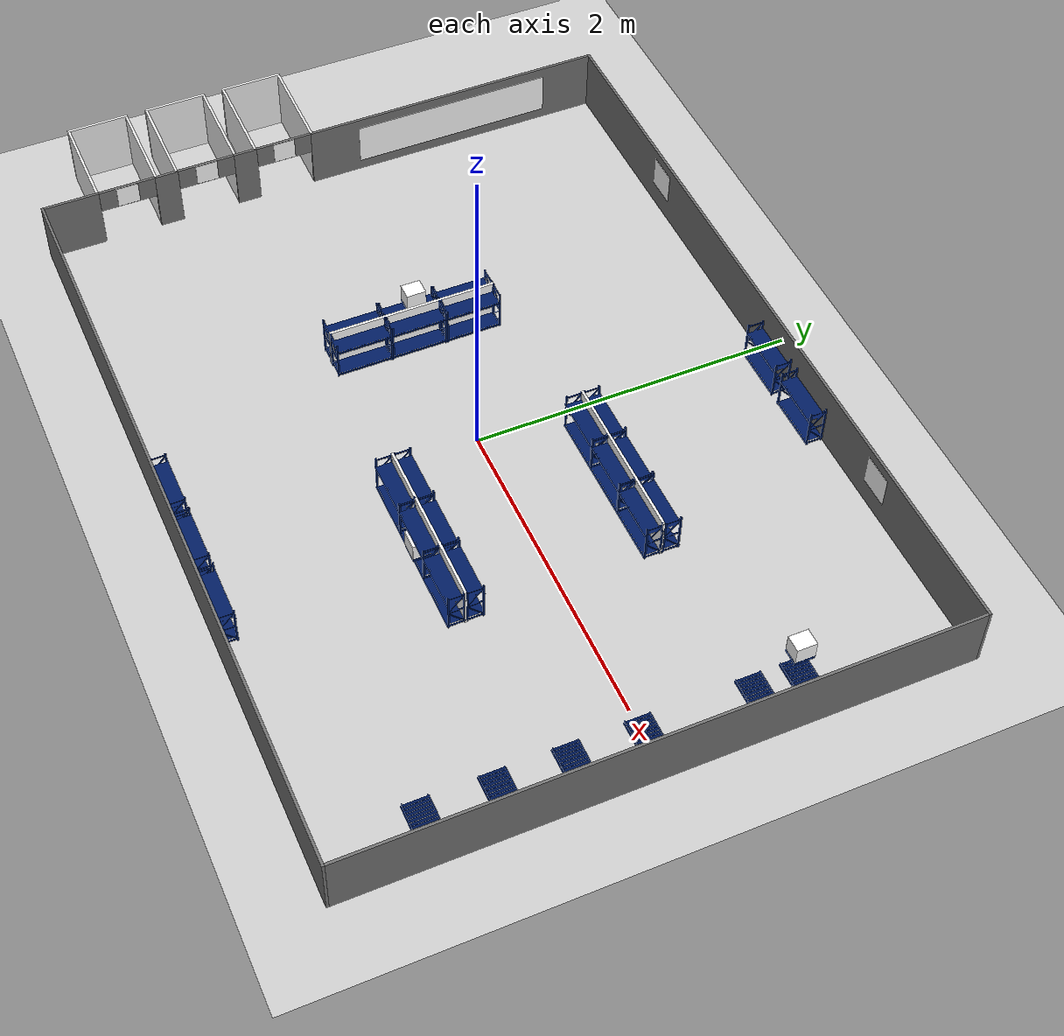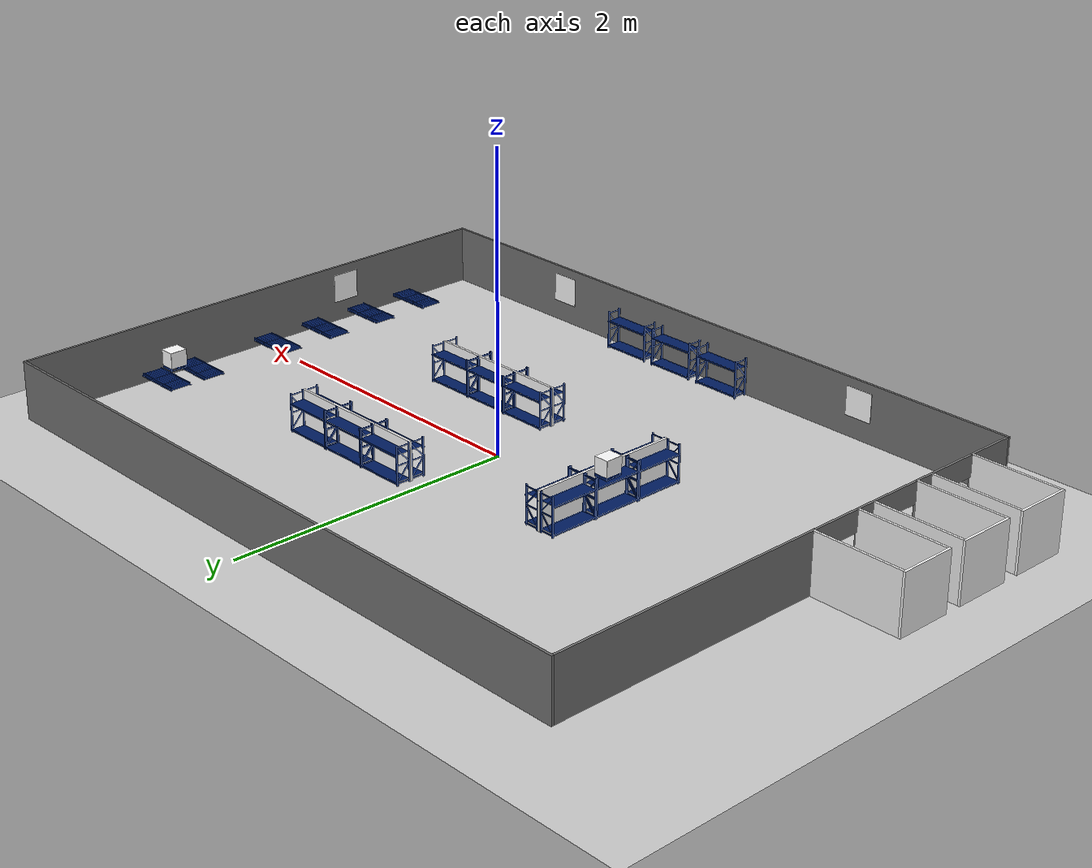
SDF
<?xml version="1.0" ?>
<sdf version="1.8">
  <world name="factory_world">

    <physics name="fast_physics" type="ignored">
      <max_step_size>0.004</max_step_size>
      <real_time_factor>1.0</real_time_factor>
      <real_time_update_rate>250</real_time_update_rate>
    </physics>

    <plugin filename="libignition-gazebo-physics-system.so" name="ignition::gazebo::systems::Physics"/>
    <plugin filename="libignition-gazebo-user-commands-system.so" name="ignition::gazebo::systems::UserCommands"/>
    <plugin filename="libignition-gazebo-scene-broadcaster-system.so" name="ignition::gazebo::systems::SceneBroadcaster"/>
    <plugin filename="libignition-gazebo-contact-system.so" name="ignition::gazebo::systems::Contact"/>

    <scene>
      <shadows>false</shadows>
      <grid>false</grid>
    </scene>

    <light type="directional" name="sun">
      <cast_shadows>false</cast_shadows>
      <pose>0 0 10 0 0 0</pose>
      <diffuse>1 1 1 1</diffuse>
      <specular>0.5 0.5 0.5 1</specular>
    </light>

    <model name="ground_plane">
      <static>true</static>
      <link name="link">
        <collision name="collision">
          <geometry><plane><normal>0 0 1</normal><size>100 100</size></plane></geometry>
        </collision>
        <visual name="visual">
          <geometry><plane><normal>0 0 1</normal><size>100 100</size></plane></geometry>
          <material>
            <ambient>0.8 0.8 0.8 1</ambient>
            <diffuse>0.8 0.8 0.8 1</diffuse>
          </material>
        </visual>
      </link>
    </model>

    <model name="factory_walls">
      <static>true</static>

      <link name="north_wall">
        <pose>0 1.841 0.201 0 0 0</pose>
        <collision name="north_col">
          <geometry><box><size>4.884 0.016 0.402</size></box></geometry>
        </collision>
        <visual name="north_vis">
          <geometry><box><size>4.884 0.016 0.402</size></box></geometry>
          <material>
            <ambient>0.45 0.45 0.45 1</ambient>
            <diffuse>0.45 0.45 0.45 1</diffuse>
          </material>
        </visual>

        <visual name="aruco_0_vis">
          <pose>1.326 -0.009 0.039 0 0 0</pose>
          <geometry><box><size>0.2 0.002 0.2</size></box></geometry>
          <material>
            <ambient>1 1 1 1</ambient><diffuse>1 1 1 1</diffuse><emissive>1 1 1 1</emissive>
            <pbr>
              <metal>
                <albedo_map>model://puzzlebot_description/materials/textures/4x4_1000-0.png</albedo_map>
                <emissive_map>model://puzzlebot_description/materials/textures/4x4_1000-0.png</emissive_map>
                <roughness>1.0</roughness><metalness>0.0</metalness>
              </metal>
            </pbr>
          </material>
        </visual>

        <visual name="aruco_4_vis">
          <pose>-1.326 -0.009 0.039 0 0 0</pose>
          <geometry><box><size>0.2 0.002 0.2</size></box></geometry>
          <material>
            <ambient>1 1 1 1</ambient><diffuse>1 1 1 1</diffuse><emissive>1 1 1 1</emissive>
            <pbr>
              <metal>
                <albedo_map>model://puzzlebot_description/materials/textures/4x4_1000-4.png</albedo_map>
                <emissive_map>model://puzzlebot_description/materials/textures/4x4_1000-4.png</emissive_map>
                <roughness>1.0</roughness><metalness>0.0</metalness>
              </metal>
            </pbr>
          </material>
        </visual>
      </link>

      <link name="south_wall">
        <pose>0 -1.841 0.201 0 0 0</pose>
        <collision name="south_col">
          <geometry><box><size>4.884 0.016 0.402</size></box></geometry>
        </collision>
        <visual name="south_vis">
          <geometry><box><size>4.884 0.016 0.402</size></box></geometry>
          <material><ambient>0.45 0.45 0.45 1</ambient><diffuse>0.45 0.45 0.45 1</diffuse></material>
        </visual>

        <visual name="aruco_2_vis">
          <pose>1.326 0.009 0.039 0 0 0</pose>
          <geometry><box><size>0.2 0.002 0.2</size></box></geometry>
          <material>
            <ambient>1 1 1 1</ambient><diffuse>1 1 1 1</diffuse><emissive>1 1 1 1</emissive>
            <pbr>
              <metal>
                <albedo_map>model://puzzlebot_description/materials/textures/4x4_1000-2.png</albedo_map>
                <emissive_map>model://puzzlebot_description/materials/textures/4x4_1000-2.png</emissive_map>
                <roughness>1.0</roughness><metalness>0.0</metalness>
              </metal>
            </pbr>
          </material>
        </visual>

        <visual name="aruco_3_vis">
          <pose>-1.326 0.009 0.039 0 0 0</pose>
          <geometry><box><size>0.2 0.002 0.2</size></box></geometry>
          <material>
            <ambient>1 1 1 1</ambient><diffuse>1 1 1 1</diffuse><emissive>1 1 1 1</emissive>
            <pbr>
              <metal>
                <albedo_map>model://puzzlebot_description/materials/textures/4x4_1000-3.png</albedo_map>
                <emissive_map>model://puzzlebot_description/materials/textures/4x4_1000-3.png</emissive_map>
                <roughness>1.0</roughness><metalness>0.0</metalness>
              </metal>
            </pbr>
          </material>
        </visual>
      </link>

      <link name="east_wall">
        <pose>2.434 0 0.201 0 0 0</pose>
        <collision name="east_col">
          <geometry><box><size>0.016 3.666 0.402</size></box></geometry>
        </collision>
        <visual name="east_vis">
          <geometry><box><size>0.016 3.666 0.402</size></box></geometry>
          <material><ambient>0.45 0.45 0.45 1</ambient><diffuse>0.45 0.45 0.45 1</diffuse></material>
        </visual>

        <visual name="aruco_1_vis">
          <pose>-0.009 -0.733 0.039 0 0 0</pose>
          <geometry><box><size>0.002 0.2 0.2</size></box></geometry>
          <material>
            <ambient>1 1 1 1</ambient><diffuse>1 1 1 1</diffuse><emissive>1 1 1 1</emissive>
            <pbr>
              <metal>
                <albedo_map>model://puzzlebot_description/materials/textures/4x4_1000-1.png</albedo_map>
                <emissive_map>model://puzzlebot_description/materials/textures/4x4_1000-1.png</emissive_map>
                <roughness>1.0</roughness><metalness>0.0</metalness>
              </metal>
            </pbr>
          </material>
        </visual>
      </link>

      <link name="west_wall_seg1">
        <pose>-2.434 -1.6605 0.201 0 0 0</pose>
        <collision name="ww1_col"><geometry><box><size>0.016 0.345 0.402</size></box></geometry></collision>
        <visual name="ww1_vis"><geometry><box><size>0.016 0.345 0.402</size></box></geometry>
        <material><ambient>0.45 0.45 0.45 1</ambient><diffuse>0.45 0.45 0.45 1</diffuse></material></visual>
      </link>

      <link name="west_door1_header">
        <pose>-2.434 -1.308 0.329 0 0 0</pose>
        <collision name="wd1_col"><geometry><box><size>0.016 0.360 0.146</size></box></geometry></collision>
        <visual name="wd1_vis">
          <geometry><box><size>0.016 0.360 0.146</size></box></geometry>
          <material><ambient>0.45 0.45 0.45 1</ambient><diffuse>0.45 0.45 0.45 1</diffuse></material>
        </visual>

        <visual name="logo1_vis">
          <pose>0.009 0 0 0 0 0</pose>
          <geometry>
            <box><size>0.002 0.14 0.14</size></box>
          </geometry>
          <material>
            <ambient>1 1 1 1</ambient>
            <diffuse>1 1 1 1</diffuse>
            <emissive>1 1 1 1</emissive>
            <pbr>
              <metal>
                <albedo_map>model://puzzlebot_description/materials/textures/client_logo_1.png</albedo_map>
                <emissive_map>model://puzzlebot_description/materials/textures/client_logo_1.png</emissive_map>
                <roughness>1.0</roughness>
                <metalness>0.0</metalness>
              </metal>
            </pbr>
          </material>
        </visual>
      </link>

      <link name="west_wall_seg2">
        <pose>-2.434 -1.053 0.201 0 0 0</pose>
        <collision name="ww2_col"><geometry><box><size>0.016 0.150 0.402</size></box></geometry></collision>
        <visual name="ww2_vis"><geometry><box><size>0.016 0.150 0.402</size></box></geometry>
        <material><ambient>0.45 0.45 0.45 1</ambient><diffuse>0.45 0.45 0.45 1</diffuse></material></visual>
      </link>

      <link name="west_door2_header">
        <pose>-2.434 -0.795 0.329 0 0 0</pose>
        <collision name="wd2_col"><geometry><box><size>0.016 0.366 0.146</size></box></geometry></collision>
        <visual name="wd2_vis"><geometry><box><size>0.016 0.366 0.146</size></box></geometry>
        <material><ambient>0.45 0.45 0.45 1</ambient><diffuse>0.45 0.45 0.45 1</diffuse></material></visual>

        <visual name="logo2_vis">
          <pose>0.009 0 0 0 0 0</pose>
          <geometry>
            <box><size>0.002 0.14 0.14</size></box>
          </geometry>
          <material>
            <ambient>1 1 1 1</ambient>
            <diffuse>1 1 1 1</diffuse>
            <emissive>1 1 1 1</emissive>
            <pbr>
              <metal>
                <albedo_map>model://puzzlebot_description/materials/textures/client_logo_2.png</albedo_map>
                <emissive_map>model://puzzlebot_description/materials/textures/client_logo_2.png</emissive_map>
                <roughness>1.0</roughness>
                <metalness>0.0</metalness>
              </metal>
            </pbr>
          </material>
        </visual>
      </link>

      <link name="west_wall_seg3">
        <pose>-2.434 -0.537 0.201 0 0 0</pose>
        <collision name="ww3_col"><geometry><box><size>0.016 0.150 0.402</size></box></geometry></collision>
        <visual name="ww3_vis"><geometry><box><size>0.016 0.150 0.402</size></box></geometry>
        <material><ambient>0.45 0.45 0.45 1</ambient><diffuse>0.45 0.45 0.45 1</diffuse></material></visual>
      </link>

      <link name="west_door3_header">
        <pose>-2.434 -0.282 0.329 0 0 0</pose>
        <collision name="wd3_col"><geometry><box><size>0.016 0.360 0.146</size></box></geometry></collision>
        <visual name="wd3_vis"><geometry><box><size>0.016 0.360 0.146</size></box></geometry>
        <material><ambient>0.45 0.45 0.45 1</ambient><diffuse>0.45 0.45 0.45 1</diffuse></material></visual>

        <visual name="logo3_vis">
          <pose>0.009 0 0 0 0 0</pose>
          <geometry>
            <box><size>0.002 0.14 0.14</size></box>
          </geometry>
          <material>
            <ambient>1 1 1 1</ambient>
            <diffuse>1 1 1 1</diffuse>
            <emissive>1 1 1 1</emissive>
            <pbr>
              <metal>
                <albedo_map>model://puzzlebot_description/materials/textures/client_logo_3.png</albedo_map>
                <emissive_map>model://puzzlebot_description/materials/textures/client_logo_3.png</emissive_map>
                <roughness>1.0</roughness>
                <metalness>0.0</metalness>
              </metal>
            </pbr>
          </material>
        </visual>
      </link>

      <link name="west_wall_seg4">
        <pose>-2.434 0.8655 0.201 0 0 0</pose>
        <collision name="ww4_col"><geometry><box><size>0.016 1.935 0.402</size></box></geometry></collision>
        <visual name="ww4_vis"><geometry><box><size>0.016 1.935 0.402</size></box></geometry>
        <material><ambient>0.45 0.45 0.45 1</ambient><diffuse>0.45 0.45 0.45 1</diffuse></material></visual>
        <visual name="sponsor_logo_vis">
          <pose>0.009 0 0 0 0 0</pose>
          <geometry>
            <box><size>0.002 1.290 0.268</size></box>
          </geometry>
          <material>
            <ambient>1 1 1 1</ambient>
            <diffuse>1 1 1 1</diffuse>
            <emissive>1 1 1 1</emissive>
            <pbr>
              <metal>
                <albedo_map>model://puzzlebot_description/materials/textures/sponsor_logos.png</albedo_map>
                <emissive_map>model://puzzlebot_description/materials/textures/sponsor_logos.png</emissive_map>
                <roughness>1.0</roughness>
                <metalness>0.0</metalness>
              </metal>
            </pbr>
          </material>
        </visual>
      </link>

      <link name="d1_corr_l">
        <pose>-2.7415 -1.496 0.201 0 0 0</pose>
        <collision name="d1_cl_c"><geometry><box><size>0.615 0.016 0.402</size></box></geometry></collision>
        <visual name="d1_cl_v"><geometry><box><size>0.615 0.016 0.402</size></box></geometry><material><ambient>0.95 0.95 0.95 1</ambient><diffuse>0.95 0.95 0.95 1</diffuse></material></visual>
      </link>
      <link name="d1_corr_r">
        <pose>-2.7415 -1.120 0.201 0 0 0</pose>
        <collision name="d1_cr_c"><geometry><box><size>0.615 0.016 0.402</size></box></geometry></collision>
        <visual name="d1_cr_v"><geometry><box><size>0.615 0.016 0.402</size></box></geometry><material><ambient>0.95 0.95 0.95 1</ambient><diffuse>0.95 0.95 0.95 1</diffuse></material></visual>
      </link>
      <link name="d1_corr_b">
        <pose>-3.057 -1.308 0.201 0 0 0</pose>
        <collision name="d1_cb_c"><geometry><box><size>0.016 0.392 0.402</size></box></geometry></collision>
        <visual name="d1_cb_v"><geometry><box><size>0.016 0.392 0.402</size></box></geometry><material><ambient>0.95 0.95 0.95 1</ambient><diffuse>0.95 0.95 0.95 1</diffuse></material></visual>
      </link>

      <link name="d2_corr_l">
        <pose>-2.7415 -0.986 0.201 0 0 0</pose>
        <collision name="d2_cl_c"><geometry><box><size>0.615 0.016 0.402</size></box></geometry></collision>
        <visual name="d2_cl_v"><geometry><box><size>0.615 0.016 0.402</size></box></geometry><material><ambient>0.95 0.95 0.95 1</ambient><diffuse>0.95 0.95 0.95 1</diffuse></material></visual>
      </link>
      <link name="d2_corr_r">
        <pose>-2.7415 -0.604 0.201 0 0 0</pose>
        <collision name="d2_cr_c"><geometry><box><size>0.615 0.016 0.402</size></box></geometry></collision>
        <visual name="d2_cr_v"><geometry><box><size>0.615 0.016 0.402</size></box></geometry><material><ambient>0.95 0.95 0.95 1</ambient><diffuse>0.95 0.95 0.95 1</diffuse></material></visual>
      </link>
      <link name="d2_corr_b">
        <pose>-3.057 -0.795 0.201 0 0 0</pose>
        <collision name="d2_cb_c"><geometry><box><size>0.016 0.398 0.402</size></box></geometry></collision>
        <visual name="d2_cb_v"><geometry><box><size>0.016 0.398 0.402</size></box></geometry><material><ambient>0.95 0.95 0.95 1</ambient><diffuse>0.95 0.95 0.95 1</diffuse></material></visual>
      </link>

      <link name="d3_corr_l">
        <pose>-2.7415 -0.470 0.201 0 0 0</pose>
        <collision name="d3_cl_c"><geometry><box><size>0.615 0.016 0.402</size></box></geometry></collision>
        <visual name="d3_cl_v"><geometry><box><size>0.615 0.016 0.402</size></box></geometry><material><ambient>0.95 0.95 0.95 1</ambient><diffuse>0.95 0.95 0.95 1</diffuse></material></visual>
      </link>
      <link name="d3_corr_r">
        <pose>-2.7415 -0.094 0.201 0 0 0</pose>
        <collision name="d3_cr_c"><geometry><box><size>0.615 0.016 0.402</size></box></geometry></collision>
        <visual name="d3_cr_v"><geometry><box><size>0.615 0.016 0.402</size></box></geometry><material><ambient>0.95 0.95 0.95 1</ambient><diffuse>0.95 0.95 0.95 1</diffuse></material></visual>
      </link>
      <link name="d3_corr_b">
        <pose>-3.057 -0.282 0.201 0 0 0</pose>
        <collision name="d3_cb_c"><geometry><box><size>0.016 0.392 0.402</size></box></geometry></collision>
        <visual name="d3_cb_v"><geometry><box><size>0.016 0.392 0.402</size></box></geometry><material><ambient>0.95 0.95 0.95 1</ambient><diffuse>0.95 0.95 0.95 1</diffuse></material></visual>
      </link>
    </model>

    <model name="rack_north_1"><static>true</static><pose>0.781 1.833 0 0 0 0</pose>
      <link name="rack_link"><collision name="rack_col"><geometry><mesh><uri>model://puzzlebot_description/models/rack_collision.stl</uri></mesh></geometry></collision>
      <visual name="rack_vis"><geometry><mesh><uri>model://puzzlebot_description/models/rack.stl</uri></mesh></geometry><material><ambient>0.0 0.11 0.38 1</ambient><diffuse>0.0 0.11 0.38 1</diffuse><specular>0.2 0.2 0.2 1</specular></material></visual></link>
    </model>

    <model name="rack_north_2"><static>true</static><pose>0.366 1.833 0 0 0 0</pose>
      <link name="rack_link"><collision name="rack_col"><geometry><mesh><uri>model://puzzlebot_description/models/rack_collision.stl</uri></mesh></geometry></collision>
      <visual name="rack_vis"><geometry><mesh><uri>model://puzzlebot_description/models/rack.stl</uri></mesh></geometry><material><ambient>0.0 0.11 0.38 1</ambient><diffuse>0.0 0.11 0.38 1</diffuse><specular>0.2 0.2 0.2 1</specular></material></visual></link>
    </model>

    <model name="rack_south_1"><static>true</static><pose>0.781 -1.722 0 0 0 0</pose>
      <link name="rack_link"><collision name="rack_col"><geometry><mesh><uri>model://puzzlebot_description/models/rack_collision.stl</uri></mesh></geometry></collision>
      <visual name="rack_vis"><geometry><mesh><uri>model://puzzlebot_description/models/rack.stl</uri></mesh></geometry><material><ambient>0.0 0.11 0.38 1</ambient><diffuse>0.0 0.11 0.38 1</diffuse><specular>0.2 0.2 0.2 1</specular></material></visual></link>
    </model>

    <model name="rack_south_2"><static>true</static><pose>0.366 -1.722 0 0 0 0</pose>
      <link name="rack_link"><collision name="rack_col"><geometry><mesh><uri>model://puzzlebot_description/models/rack_collision.stl</uri></mesh></geometry></collision>
      <visual name="rack_vis"><geometry><mesh><uri>model://puzzlebot_description/models/rack.stl</uri></mesh></geometry><material><ambient>0.0 0.11 0.38 1</ambient><diffuse>0.0 0.11 0.38 1</diffuse><specular>0.2 0.2 0.2 1</specular></material></visual></link>
    </model>

    <model name="rack_south_3"><static>true</static><pose>-0.049 -1.722 0 0 0 0</pose>
      <link name="rack_link"><collision name="rack_col"><geometry><mesh><uri>model://puzzlebot_description/models/rack_collision.stl</uri></mesh></geometry></collision>
      <visual name="rack_vis"><geometry><mesh><uri>model://puzzlebot_description/models/rack.stl</uri></mesh></geometry><material><ambient>0.0 0.11 0.38 1</ambient><diffuse>0.0 0.11 0.38 1</diffuse><specular>0.2 0.2 0.2 1</specular></material></visual></link>
    </model>

    <model name="rack_s1_p1_1"><static>true</static><pose>1.151 0.723 0 0 0 0</pose>
      <link name="rack_link"><collision name="rack_col"><geometry><mesh><uri>model://puzzlebot_description/models/rack_collision.stl</uri></mesh></geometry></collision>
      <visual name="rack_vis"><geometry><mesh><uri>model://puzzlebot_description/models/rack.stl</uri></mesh></geometry><material><ambient>0.0 0.11 0.38 1</ambient><diffuse>0.0 0.11 0.38 1</diffuse><specular>0.2 0.2 0.2 1</specular></material></visual></link>
    </model>
    <model name="rack_s1_p1_2"><static>true</static><pose>1.151 0.612 0 0 0 0</pose>
      <link name="rack_link"><collision name="rack_col"><geometry><mesh><uri>model://puzzlebot_description/models/rack_collision.stl</uri></mesh></geometry></collision>
      <visual name="rack_vis"><geometry><mesh><uri>model://puzzlebot_description/models/rack.stl</uri></mesh></geometry><material><ambient>0.0 0.11 0.38 1</ambient><diffuse>0.0 0.11 0.38 1</diffuse><specular>0.2 0.2 0.2 1</specular></material></visual></link>
    </model>

    <model name="rack_s1_p2_1"><static>true</static><pose>0.801 0.723 0 0 0 0</pose>
      <link name="rack_link"><collision name="rack_col"><geometry><mesh><uri>model://puzzlebot_description/models/rack_collision.stl</uri></mesh></geometry></collision>
      <visual name="rack_vis"><geometry><mesh><uri>model://puzzlebot_description/models/rack.stl</uri></mesh></geometry><material><ambient>0.0 0.11 0.38 1</ambient><diffuse>0.0 0.11 0.38 1</diffuse><specular>0.2 0.2 0.2 1</specular></material></visual></link>
    </model>
    <model name="rack_s1_p2_2"><static>true</static><pose>0.801 0.612 0 0 0 0</pose>
      <link name="rack_link"><collision name="rack_col"><geometry><mesh><uri>model://puzzlebot_description/models/rack_collision.stl</uri></mesh></geometry></collision>
      <visual name="rack_vis"><geometry><mesh><uri>model://puzzlebot_description/models/rack.stl</uri></mesh></geometry><material><ambient>0.0 0.11 0.38 1</ambient><diffuse>0.0 0.11 0.38 1</diffuse><specular>0.2 0.2 0.2 1</specular></material></visual></link>
    </model>

    <model name="rack_s1_p3_1"><static>true</static><pose>0.451 0.723 0 0 0 0</pose>
      <link name="rack_link"><collision name="rack_col"><geometry><mesh><uri>model://puzzlebot_description/models/rack_collision.stl</uri></mesh></geometry></collision>
      <visual name="rack_vis"><geometry><mesh><uri>model://puzzlebot_description/models/rack.stl</uri></mesh></geometry><material><ambient>0.0 0.11 0.38 1</ambient><diffuse>0.0 0.11 0.38 1</diffuse><specular>0.2 0.2 0.2 1</specular></material></visual></link>
    </model>
    <model name="rack_s1_p3_2"><static>true</static><pose>0.451 0.612 0 0 0 0</pose>
      <link name="rack_link"><collision name="rack_col"><geometry><mesh><uri>model://puzzlebot_description/models/rack_collision.stl</uri></mesh></geometry></collision>
      <visual name="rack_vis"><geometry><mesh><uri>model://puzzlebot_description/models/rack.stl</uri></mesh></geometry><material><ambient>0.0 0.11 0.38 1</ambient><diffuse>0.0 0.11 0.38 1</diffuse><specular>0.2 0.2 0.2 1</specular></material></visual></link>
    </model>

    <model name="rack_s2_p1_1"><static>true</static><pose>1.151 -0.449 0 0 0 0</pose>
      <link name="rack_link"><collision name="rack_col"><geometry><mesh><uri>model://puzzlebot_description/models/rack_collision.stl</uri></mesh></geometry></collision>
      <visual name="rack_vis"><geometry><mesh><uri>model://puzzlebot_description/models/rack.stl</uri></mesh></geometry><material><ambient>0.0 0.11 0.38 1</ambient><diffuse>0.0 0.11 0.38 1</diffuse><specular>0.2 0.2 0.2 1</specular></material></visual></link>
    </model>
    <model name="rack_s2_p1_2"><static>true</static><pose>1.151 -0.560 0 0 0 0</pose>
      <link name="rack_link"><collision name="rack_col"><geometry><mesh><uri>model://puzzlebot_description/models/rack_collision.stl</uri></mesh></geometry></collision>
      <visual name="rack_vis"><geometry><mesh><uri>model://puzzlebot_description/models/rack.stl</uri></mesh></geometry><material><ambient>0.0 0.11 0.38 1</ambient><diffuse>0.0 0.11 0.38 1</diffuse><specular>0.2 0.2 0.2 1</specular></material></visual></link>
    </model>

    <model name="rack_s2_p2_1"><static>true</static><pose>0.801 -0.449 0 0 0 0</pose>
      <link name="rack_link"><collision name="rack_col"><geometry><mesh><uri>model://puzzlebot_description/models/rack_collision.stl</uri></mesh></geometry></collision>
      <visual name="rack_vis"><geometry><mesh><uri>model://puzzlebot_description/models/rack.stl</uri></mesh></geometry><material><ambient>0.0 0.11 0.38 1</ambient><diffuse>0.0 0.11 0.38 1</diffuse><specular>0.2 0.2 0.2 1</specular></material></visual></link>
    </model>
    <model name="rack_s2_p2_2"><static>true</static><pose>0.801 -0.560 0 0 0 0</pose>
      <link name="rack_link"><collision name="rack_col"><geometry><mesh><uri>model://puzzlebot_description/models/rack_collision.stl</uri></mesh></geometry></collision>
      <visual name="rack_vis"><geometry><mesh><uri>model://puzzlebot_description/models/rack.stl</uri></mesh></geometry><material><ambient>0.0 0.11 0.38 1</ambient><diffuse>0.0 0.11 0.38 1</diffuse><specular>0.2 0.2 0.2 1</specular></material></visual></link>
    </model>

    <model name="rack_s2_p3_1"><static>true</static><pose>0.451 -0.449 0 0 0 0</pose>
      <link name="rack_link"><collision name="rack_col"><geometry><mesh><uri>model://puzzlebot_description/models/rack_collision.stl</uri></mesh></geometry></collision>
      <visual name="rack_vis"><geometry><mesh><uri>model://puzzlebot_description/models/rack.stl</uri></mesh></geometry><material><ambient>0.0 0.11 0.38 1</ambient><diffuse>0.0 0.11 0.38 1</diffuse><specular>0.2 0.2 0.2 1</specular></material></visual></link>
    </model>
    <model name="rack_s2_p3_2"><static>true</static><pose>0.451 -0.560 0 0 0 0</pose>
      <link name="rack_link"><collision name="rack_col"><geometry><mesh><uri>model://puzzlebot_description/models/rack_collision.stl</uri></mesh></geometry></collision>
      <visual name="rack_vis"><geometry><mesh><uri>model://puzzlebot_description/models/rack.stl</uri></mesh></geometry><material><ambient>0.0 0.11 0.38 1</ambient><diffuse>0.0 0.11 0.38 1</diffuse><specular>0.2 0.2 0.2 1</specular></material></visual></link>
    </model>

    <model name="rack_s3_1"><static>true</static><pose>-0.885 -0.210 0 0 0 1.5708</pose>
      <link name="rack_link"><collision name="rack_col"><geometry><mesh><uri>model://puzzlebot_description/models/rack_collision.stl</uri></mesh></geometry></collision>
      <visual name="rack_vis"><geometry><mesh><uri>model://puzzlebot_description/models/rack.stl</uri></mesh></geometry><material><ambient>0.0 0.11 0.38 1</ambient><diffuse>0.0 0.11 0.38 1</diffuse><specular>0.2 0.2 0.2 1</specular></material></visual></link>
    </model>

    <model name="rack_s3_3"><static>true</static><pose>-0.885 0.140 0 0 0 1.5708</pose>
      <link name="rack_link"><collision name="rack_col"><geometry><mesh><uri>model://puzzlebot_description/models/rack_collision.stl</uri></mesh></geometry></collision>
      <visual name="rack_vis"><geometry><mesh><uri>model://puzzlebot_description/models/rack.stl</uri></mesh></geometry><material><ambient>0.0 0.11 0.38 1</ambient><diffuse>0.0 0.11 0.38 1</diffuse><specular>0.2 0.2 0.2 1</specular></material></visual></link>
    </model>

    <model name="rack_s3_5"><static>true</static><pose>-0.885 0.490 0 0 0 1.5708</pose>
      <link name="rack_link"><collision name="rack_col"><geometry><mesh><uri>model://puzzlebot_description/models/rack_collision.stl</uri></mesh></geometry></collision>
      <visual name="rack_vis"><geometry><mesh><uri>model://puzzlebot_description/models/rack.stl</uri></mesh></geometry><material><ambient>0.0 0.11 0.38 1</ambient><diffuse>0.0 0.11 0.38 1</diffuse><specular>0.2 0.2 0.2 1</specular></material></visual></link>
    </model>

    <model name="rack_s3_2"><static>true</static><pose>-1.012 -0.210 0 0 0 1.5708</pose>
      <link name="rack_link"><collision name="rack_col"><geometry><mesh><uri>model://puzzlebot_description/models/rack_collision.stl</uri></mesh></geometry></collision>
      <visual name="rack_vis"><geometry><mesh><uri>model://puzzlebot_description/models/rack.stl</uri></mesh></geometry><material><ambient>0.0 0.11 0.38 1</ambient><diffuse>0.0 0.11 0.38 1</diffuse><specular>0.2 0.2 0.2 1</specular></material></visual></link>
    </model>

    <model name="rack_s3_4"><static>true</static><pose>-1.012 0.140 0 0 0 1.5708</pose>
      <link name="rack_link"><collision name="rack_col"><geometry><mesh><uri>model://puzzlebot_description/models/rack_collision.stl</uri></mesh></geometry></collision>
      <visual name="rack_vis"><geometry><mesh><uri>model://puzzlebot_description/models/rack.stl</uri></mesh></geometry><material><ambient>0.0 0.11 0.38 1</ambient><diffuse>0.0 0.11 0.38 1</diffuse><specular>0.2 0.2 0.2 1</specular></material></visual></link>
    </model>

    <model name="rack_s3_6"><static>true</static><pose>-1.012 0.490 0 0 0 1.5708</pose>
      <link name="rack_link"><collision name="rack_col"><geometry><mesh><uri>model://puzzlebot_description/models/rack_collision.stl</uri></mesh></geometry></collision>
      <visual name="rack_vis"><geometry><mesh><uri>model://puzzlebot_description/models/rack.stl</uri></mesh></geometry><material><ambient>0.0 0.11 0.38 1</ambient><diffuse>0.0 0.11 0.38 1</diffuse><specular>0.2 0.2 0.2 1</specular></material></visual></link>
    </model>

    <model name="rack_middle_walls">
      <static>true</static>

      <link name="set1_middle_wall">
        <pose>0.626 0.612 0.1325 0 0 0</pose>
        <collision name="s1_wall_col"><geometry><box><size>1.050 0.016 0.265</size></box></geometry></collision>
        <visual name="s1_wall_vis"><geometry><box><size>1.050 0.016 0.265</size></box></geometry><material><ambient>1 1 1 1</ambient><diffuse>1 1 1 1</diffuse></material></visual>
      </link>

      <link name="set2_middle_wall">
        <pose>0.626 -0.560 0.1325 0 0 0</pose>
        <collision name="s2_wall_col"><geometry><box><size>1.050 0.016 0.265</size></box></geometry></collision>
        <visual name="s2_wall_vis"><geometry><box><size>1.050 0.016 0.265</size></box></geometry><material><ambient>1 1 1 1</ambient><diffuse>1 1 1 1</diffuse></material></visual>
      </link>

      <link name="set3_middle_wall">
        <pose>-0.893 -0.035 0.1325 0 0 0</pose>
        <collision name="s3_wall_col"><geometry><box><size>0.016 1.050 0.265</size></box></geometry></collision>
        <visual name="s3_wall_vis"><geometry><box><size>0.016 1.050 0.265</size></box></geometry><material><ambient>1 1 1 1</ambient><diffuse>1 1 1 1</diffuse></material></visual>
      </link>
    </model>

    <model name="conveyor_1">
      <static>true</static>
      <pose>2.3765 0.9110 0.0500 0 0 1.57080</pose>
      <link name="conveyor_link">

        <collision name="conveyor_col">
          <pose>0 0 0 0 0 0</pose>
          <geometry>
            <mesh>
              <uri>model://puzzlebot_description/models/conveyor_collision.stl</uri>
            </mesh>
          </geometry>
        </collision>

        <visual name="conveyor_visual">
          <pose>0 0 0 0 0 0</pose>
          <geometry><mesh><uri>model://puzzlebot_description/models/conveyor.stl</uri></mesh></geometry>
          <material>
            <ambient>0.0 0.11 0.38 1</ambient>
            <diffuse>0.0 0.11 0.38 1</diffuse>
            <specular>0.2 0.2 0.2 1</specular>
          </material>
        </visual>
      </link>
    </model>

    <model name="conveyor_2">
      <static>true</static>
      <pose>2.2615 0.9110 0.0500 0 0 1.57080</pose>
      <link name="conveyor_link">

        <collision name="conveyor_col">
          <pose>0 0 0 0 0 0</pose>
          <geometry>
            <mesh>
              <uri>model://puzzlebot_description/models/conveyor_collision.stl</uri>
            </mesh>
          </geometry>
        </collision>

        <visual name="conveyor_visual">
          <pose>0 0 0 0 0 0</pose>
          <geometry><mesh><uri>model://puzzlebot_description/models/conveyor.stl</uri></mesh></geometry>
          <material>
            <ambient>0.0 0.11 0.38 1</ambient>
            <diffuse>0.0 0.11 0.38 1</diffuse>
            <specular>0.2 0.2 0.2 1</specular>
          </material>
        </visual>
      </link>
    </model>

    <model name="conveyor_3">
      <static>true</static>
      <pose>2.1465 0.9110 0.0500 0 0 1.57080</pose>
      <link name="conveyor_link">

        <collision name="conveyor_col">
          <pose>0 0 0 0 0 0</pose>
          <geometry>
            <mesh>
              <uri>model://puzzlebot_description/models/conveyor_collision.stl</uri>
            </mesh>
          </geometry>
        </collision>

        <visual name="conveyor_visual">
          <pose>0 0 0 0 0 0</pose>
          <geometry><mesh><uri>model://puzzlebot_description/models/conveyor.stl</uri></mesh></geometry>
          <material>
            <ambient>0.0 0.11 0.38 1</ambient>
            <diffuse>0.0 0.11 0.38 1</diffuse>
            <specular>0.2 0.2 0.2 1</specular>
          </material>
        </visual>
      </link>
    </model>

    <model name="conveyor_4">
      <static>true</static>
      <pose>2.3765 0.6460 0.0500 0 0 1.57080</pose>
      <link name="conveyor_link">

        <collision name="conveyor_col">
          <pose>0 0 0 0 0 0</pose>
          <geometry>
            <mesh>
              <uri>model://puzzlebot_description/models/conveyor_collision.stl</uri>
            </mesh>
          </geometry>
        </collision>

        <visual name="conveyor_visual">
          <pose>0 0 0 0 0 0</pose>
          <geometry><mesh><uri>model://puzzlebot_description/models/conveyor.stl</uri></mesh></geometry>
          <material>
            <ambient>0.0 0.11 0.38 1</ambient>
            <diffuse>0.0 0.11 0.38 1</diffuse>
            <specular>0.2 0.2 0.2 1</specular>
          </material>
        </visual>
      </link>
    </model>

    <model name="conveyor_5">
      <static>true</static>
      <pose>2.2615 0.6460 0.0500 0 0 1.57080</pose>
      <link name="conveyor_link">

        <collision name="conveyor_col">
          <pose>0 0 0 0 0 0</pose>
          <geometry>
            <mesh>
              <uri>model://puzzlebot_description/models/conveyor_collision.stl</uri>
            </mesh>
          </geometry>
        </collision>

        <visual name="conveyor_visual">
          <pose>0 0 0 0 0 0</pose>
          <geometry><mesh><uri>model://puzzlebot_description/models/conveyor.stl</uri></mesh></geometry>
          <material>
            <ambient>0.0 0.11 0.38 1</ambient>
            <diffuse>0.0 0.11 0.38 1</diffuse>
            <specular>0.2 0.2 0.2 1</specular>
          </material>
        </visual>
      </link>
    </model>

    <model name="conveyor_6">
      <static>true</static>
      <pose>2.1465 0.6460 0.0500 0 0 1.57080</pose>
      <link name="conveyor_link">

        <collision name="conveyor_col">
          <pose>0 0 0 0 0 0</pose>
          <geometry>
            <mesh>
              <uri>model://puzzlebot_description/models/conveyor_collision.stl</uri>
            </mesh>
          </geometry>
        </collision>

        <visual name="conveyor_visual">
          <pose>0 0 0 0 0 0</pose>
          <geometry><mesh><uri>model://puzzlebot_description/models/conveyor.stl</uri></mesh></geometry>
          <material>
            <ambient>0.0 0.11 0.38 1</ambient>
            <diffuse>0.0 0.11 0.38 1</diffuse>
            <specular>0.2 0.2 0.2 1</specular>
          </material>
        </visual>
      </link>
    </model>

    <model name="conveyor_7">
      <static>true</static>
      <pose>2.3765 0.0010 0.0500 0 0 1.57080</pose>
      <link name="conveyor_link">

        <collision name="conveyor_col">
          <pose>0 0 0 0 0 0</pose>
          <geometry>
            <mesh>
              <uri>model://puzzlebot_description/models/conveyor_collision.stl</uri>
            </mesh>
          </geometry>
        </collision>

        <visual name="conveyor_visual">
          <pose>0 0 0 0 0 0</pose>
          <geometry><mesh><uri>model://puzzlebot_description/models/conveyor.stl</uri></mesh></geometry>
          <material>
            <ambient>0.0 0.11 0.38 1</ambient>
            <diffuse>0.0 0.11 0.38 1</diffuse>
            <specular>0.2 0.2 0.2 1</specular>
          </material>
        </visual>
      </link>
    </model>

    <model name="conveyor_8">
      <static>true</static>
      <pose>2.2615 0.0010 0.0500 0 0 1.57080</pose>
      <link name="conveyor_link">

        <collision name="conveyor_col">
          <pose>0 0 0 0 0 0</pose>
          <geometry>
            <mesh>
              <uri>model://puzzlebot_description/models/conveyor_collision.stl</uri>
            </mesh>
          </geometry>
        </collision>

        <visual name="conveyor_visual">
          <pose>0 0 0 0 0 0</pose>
          <geometry><mesh><uri>model://puzzlebot_description/models/conveyor.stl</uri></mesh></geometry>
          <material>
            <ambient>0.0 0.11 0.38 1</ambient>
            <diffuse>0.0 0.11 0.38 1</diffuse>
            <specular>0.2 0.2 0.2 1</specular>
          </material>
        </visual>
      </link>
    </model>

    <model name="conveyor_9">
      <static>true</static>
      <pose>2.1465 0.0010 0.0500 0 0 1.57080</pose>
      <link name="conveyor_link">

        <collision name="conveyor_col">
          <pose>0 0 0 0 0 0</pose>
          <geometry>
            <mesh>
              <uri>model://puzzlebot_description/models/conveyor_collision.stl</uri>
            </mesh>
          </geometry>
        </collision>

        <visual name="conveyor_visual">
          <pose>0 0 0 0 0 0</pose>
          <geometry><mesh><uri>model://puzzlebot_description/models/conveyor.stl</uri></mesh></geometry>
          <material>
            <ambient>0.0 0.11 0.38 1</ambient>
            <diffuse>0.0 0.11 0.38 1</diffuse>
            <specular>0.2 0.2 0.2 1</specular>
          </material>
        </visual>
      </link>
    </model>

    <model name="conveyor_10">
      <static>true</static>
      <pose>2.3765 -0.4090 0.0500 0 0 1.57080</pose>
      <link name="conveyor_link">

        <collision name="conveyor_col">
          <pose>0 0 0 0 0 0</pose>
          <geometry>
            <mesh>
              <uri>model://puzzlebot_description/models/conveyor_collision.stl</uri>
            </mesh>
          </geometry>
        </collision>

        <visual name="conveyor_visual">
          <pose>0 0 0 0 0 0</pose>
          <geometry><mesh><uri>model://puzzlebot_description/models/conveyor.stl</uri></mesh></geometry>
          <material>
            <ambient>0.0 0.11 0.38 1</ambient>
            <diffuse>0.0 0.11 0.38 1</diffuse>
            <specular>0.2 0.2 0.2 1</specular>
          </material>
        </visual>
      </link>
    </model>

    <model name="conveyor_11">
      <static>true</static>
      <pose>2.2615 -0.4090 0.0500 0 0 1.57080</pose>
      <link name="conveyor_link">

        <collision name="conveyor_col">
          <pose>0 0 0 0 0 0</pose>
          <geometry>
            <mesh>
              <uri>model://puzzlebot_description/models/conveyor_collision.stl</uri>
            </mesh>
          </geometry>
        </collision>

        <visual name="conveyor_visual">
          <pose>0 0 0 0 0 0</pose>
          <geometry><mesh><uri>model://puzzlebot_description/models/conveyor.stl</uri></mesh></geometry>
          <material>
            <ambient>0.0 0.11 0.38 1</ambient>
            <diffuse>0.0 0.11 0.38 1</diffuse>
            <specular>0.2 0.2 0.2 1</specular>
          </material>
        </visual>
      </link>
    </model>

    <model name="conveyor_12">
      <static>true</static>
      <pose>2.1465 -0.4090 0.0500 0 0 1.57080</pose>
      <link name="conveyor_link">

        <collision name="conveyor_col">
          <pose>0 0 0 0 0 0</pose>
          <geometry>
            <mesh>
              <uri>model://puzzlebot_description/models/conveyor_collision.stl</uri>
            </mesh>
          </geometry>
        </collision>

        <visual name="conveyor_visual">
          <pose>0 0 0 0 0 0</pose>
          <geometry><mesh><uri>model://puzzlebot_description/models/conveyor.stl</uri></mesh></geometry>
          <material>
            <ambient>0.0 0.11 0.38 1</ambient>
            <diffuse>0.0 0.11 0.38 1</diffuse>
            <specular>0.2 0.2 0.2 1</specular>
          </material>
        </visual>
      </link>
    </model>

    <model name="conveyor_13">
      <static>true</static>
      <pose>2.3765 -0.8190 0.0500 0 0 1.57080</pose>
      <link name="conveyor_link">

        <collision name="conveyor_col">
          <pose>0 0 0 0 0 0</pose>
          <geometry>
            <mesh>
              <uri>model://puzzlebot_description/models/conveyor_collision.stl</uri>
            </mesh>
          </geometry>
        </collision>

        <visual name="conveyor_visual">
          <pose>0 0 0 0 0 0</pose>
          <geometry><mesh><uri>model://puzzlebot_description/models/conveyor.stl</uri></mesh></geometry>
          <material>
            <ambient>0.0 0.11 0.38 1</ambient>
            <diffuse>0.0 0.11 0.38 1</diffuse>
            <specular>0.2 0.2 0.2 1</specular>
          </material>
        </visual>
      </link>
    </model>

    <model name="conveyor_14">
      <static>true</static>
      <pose>2.2615 -0.8190 0.0500 0 0 1.57080</pose>
      <link name="conveyor_link">

        <collision name="conveyor_col">
          <pose>0 0 0 0 0 0</pose>
          <geometry>
            <mesh>
              <uri>model://puzzlebot_description/models/conveyor_collision.stl</uri>
            </mesh>
          </geometry>
        </collision>

        <visual name="conveyor_visual">
          <pose>0 0 0 0 0 0</pose>
          <geometry><mesh><uri>model://puzzlebot_description/models/conveyor.stl</uri></mesh></geometry>
          <material>
            <ambient>0.0 0.11 0.38 1</ambient>
            <diffuse>0.0 0.11 0.38 1</diffuse>
            <specular>0.2 0.2 0.2 1</specular>
          </material>
        </visual>
      </link>
    </model>

    <model name="conveyor_15">
      <static>true</static>
      <pose>2.1465 -0.8190 0.0500 0 0 1.57080</pose>
      <link name="conveyor_link">

        <collision name="conveyor_col">
          <pose>0 0 0 0 0 0</pose>
          <geometry>
            <mesh>
              <uri>model://puzzlebot_description/models/conveyor_collision.stl</uri>
            </mesh>
          </geometry>
        </collision>

        <visual name="conveyor_visual">
          <pose>0 0 0 0 0 0</pose>
          <geometry><mesh><uri>model://puzzlebot_description/models/conveyor.stl</uri></mesh></geometry>
          <material>
            <ambient>0.0 0.11 0.38 1</ambient>
            <diffuse>0.0 0.11 0.38 1</diffuse>
            <specular>0.2 0.2 0.2 1</specular>
          </material>
        </visual>
      </link>
    </model>

    <model name="conveyor_16">
      <static>true</static>
      <pose>2.3765 -1.2390 0.0500 0 0 1.57080</pose>
      <link name="conveyor_link">

        <collision name="conveyor_col">
          <pose>0 0 0 0 0 0</pose>
          <geometry>
            <mesh>
              <uri>model://puzzlebot_description/models/conveyor_collision.stl</uri>
            </mesh>
          </geometry>
        </collision>

        <visual name="conveyor_visual">
          <pose>0 0 0 0 0 0</pose>
          <geometry><mesh><uri>model://puzzlebot_description/models/conveyor.stl</uri></mesh></geometry>
          <material>
            <ambient>0.0 0.11 0.38 1</ambient>
            <diffuse>0.0 0.11 0.38 1</diffuse>
            <specular>0.2 0.2 0.2 1</specular>
          </material>
        </visual>
      </link>
    </model>

    <model name="conveyor_17">
      <static>true</static>
      <pose>2.2615 -1.2390 0.0500 0 0 1.57080</pose>
      <link name="conveyor_link">

        <collision name="conveyor_col">
          <pose>0 0 0 0 0 0</pose>
          <geometry>
            <mesh>
              <uri>model://puzzlebot_description/models/conveyor_collision.stl</uri>
            </mesh>
          </geometry>
        </collision>

        <visual name="conveyor_visual">
          <pose>0 0 0 0 0 0</pose>
          <geometry><mesh><uri>model://puzzlebot_description/models/conveyor.stl</uri></mesh></geometry>
          <material>
            <ambient>0.0 0.11 0.38 1</ambient>
            <diffuse>0.0 0.11 0.38 1</diffuse>
            <specular>0.2 0.2 0.2 1</specular>
          </material>
        </visual>
      </link>
    </model>

    <model name="conveyor_18">
      <static>true</static>
      <pose>2.1465 -1.2390 0.0500 0 0 1.57080</pose>
      <link name="conveyor_link">

        <collision name="conveyor_col">
          <pose>0 0 0 0 0 0</pose>
          <geometry>
            <mesh>
              <uri>model://puzzlebot_description/models/conveyor_collision.stl</uri>
            </mesh>
          </geometry>
        </collision>

        <visual name="conveyor_visual">
          <pose>0 0 0 0 0 0</pose>
          <geometry><mesh><uri>model://puzzlebot_description/models/conveyor.stl</uri></mesh></geometry>
          <material>
            <ambient>0.0 0.11 0.38 1</ambient>
            <diffuse>0.0 0.11 0.38 1</diffuse>
            <specular>0.2 0.2 0.2 1</specular>
          </material>
        </visual>
      </link>
    </model>

    <model name="rack_first_floor_pallet">
      <pose>0.62 -0.625 0.021 0 0 3.14159</pose>
      <link name="pallet_link">

        <inertial>
          <mass>0.297551</mass>
          <pose>0 0 0 0 0 0</pose>
          <inertia>
            <ixx>0.0002578295073</ixx>
            <iyy>0.0003669229613</iyy>
            <izz>0.0006049220946</izz>
            <ixy>0</ixy><ixz>0</ixz><iyz>0</iyz>
          </inertia>
        </inertial>

        <collision name="pallet_bottom">
          <pose>0 0 0.0025 0 0 0</pose>
          <geometry><box><size>0.12 0.10 0.0031</size></box></geometry>
          <surface>
            <contact>
              <ode>
                <kp>1000000.0</kp>
                <kd>100.0</kd>
                <max_vel>0.01</max_vel>
                <min_depth>0.001</min_depth>
              </ode>
            </contact>
            <friction><ode><mu>100.0</mu><mu2>100.0</mu2></ode></friction>
          </surface>
        </collision>

        <collision name="pallet_leg_left">
          <pose>-0.055 0 0.01215 0 0 0</pose>
          <geometry><box><size>0.01 0.10 0.0143</size></box></geometry>
          <surface><friction><ode><mu>100.0</mu><mu2>100.0</mu2></ode></friction></surface>
        </collision>

        <collision name="pallet_leg_center">
          <pose>0 0 0.01215 0 0 0</pose>
          <geometry><box><size>0.01 0.10 0.0143</size></box></geometry>
          <surface><friction><ode><mu>100.0</mu><mu2>100.0</mu2></ode></friction></surface>
        </collision>

        <collision name="pallet_leg_right">
          <pose>0.055 0 0.01215 0 0 0</pose>
          <geometry><box><size>0.01 0.10 0.0143</size></box></geometry>
          <surface><friction><ode><mu>100.0</mu><mu2>100.0</mu2></ode></friction></surface>
        </collision>

        <collision name="pallet_top">
          <pose>0 0 0.0206 0 0 0</pose>
          <geometry><box><size>0.12 0.10 0.0026</size></box></geometry>
          <surface><friction><ode><mu>100.0</mu><mu2>100.0</mu2></ode></friction></surface>
        </collision>

        <visual name="pallet_vis">
          <pose>0 0 0 0 0 0</pose>
          <geometry>
            <mesh>
              <uri>model://puzzlebot_description/models/pallet.stl</uri>
            </mesh>
          </geometry>
          <material>
            <ambient>0.0 0.11 0.38 1</ambient>
            <diffuse>0.0 0.11 0.38 1</diffuse>
            <specular>0.2 0.2 0.2 1</specular>
          </material>
        </visual>

        <collision name="qr_cube_col">
          <pose>0.0 0.0 0.075 0 0 0</pose>
          <geometry><box><size>0.12 0.10 0.11</size></box></geometry>
        </collision>

        <visual name="qr_cube_vis">
          <pose>0.0 0.0 0.075 0 0 0</pose>
          <geometry><box><size>0.12 0.10 0.11</size></box></geometry>
          <material>
            <ambient>1 1 1 1</ambient>
            <diffuse>1 1 1 1</diffuse>
            <emissive>0 0 0 1</emissive>
          </material>
        </visual>

        <visual name="qr_face_vis">
          <pose>0.0 0.051 0.075 0 0 0</pose>
          <geometry><box><size>0.12 0.002 0.11</size></box></geometry>
          <material>
            <ambient>1 1 1 1</ambient>
            <diffuse>1 1 1 1</diffuse>
            <emissive>1 1 1 1</emissive>
            <pbr>
              <metal>
                <albedo_map>model://puzzlebot_description/materials/textures/qr_Popsi.png</albedo_map>
                <emissive_map>model://puzzlebot_description/materials/textures/qr_Popsi.png</emissive_map>
                <roughness>1.0</roughness>
                <metalness>0.0</metalness>
              </metal>
            </pbr>
          </material>
        </visual>
      </link>
    </model>

   <model name="rack_second_floor_pallet">
      <pose>-0.96 0.0 0.22 0 0 1.5708</pose>
      <link name="pallet_link">

        <inertial>
          <mass>0.297551</mass>
          <pose>0 0 0 0 0 0</pose>
          <inertia>
            <ixx>0.0002578295073</ixx>
            <iyy>0.0003669229613</iyy>
            <izz>0.0006049220946</izz>
            <ixy>0</ixy><ixz>0</ixz><iyz>0</iyz>
          </inertia>
        </inertial>

        <collision name="pallet_bottom">
          <pose>0 0 0.0025 0 0 0</pose>
          <geometry><box><size>0.12 0.10 0.0031</size></box></geometry>
          <surface>
            <contact>
              <ode>
                <kp>1000000.0</kp>
                <kd>100.0</kd>
                <max_vel>0.01</max_vel>
                <min_depth>0.001</min_depth>
              </ode>
            </contact>
            <friction><ode><mu>100.0</mu><mu2>100.0</mu2></ode></friction>
          </surface>
        </collision>

        <collision name="pallet_leg_left">
          <pose>-0.055 0 0.01215 0 0 0</pose>
          <geometry><box><size>0.01 0.10 0.0143</size></box></geometry>
          <surface><friction><ode><mu>100.0</mu><mu2>100.0</mu2></ode></friction></surface>
        </collision>

        <collision name="pallet_leg_center">
          <pose>0 0 0.01215 0 0 0</pose>
          <geometry><box><size>0.01 0.10 0.0143</size></box></geometry>
          <surface><friction><ode><mu>100.0</mu><mu2>100.0</mu2></ode></friction></surface>
        </collision>

        <collision name="pallet_leg_right">
          <pose>0.055 0 0.01215 0 0 0</pose>
          <geometry><box><size>0.01 0.10 0.0143</size></box></geometry>
          <surface><friction><ode><mu>100.0</mu><mu2>100.0</mu2></ode></friction></surface>
        </collision>

        <collision name="pallet_top">
          <pose>0 0 0.0206 0 0 0</pose>
          <geometry><box><size>0.12 0.10 0.0026</size></box></geometry>
          <surface><friction><ode><mu>100.0</mu><mu2>100.0</mu2></ode></friction></surface>
        </collision>

        <visual name="pallet_vis">
          <pose>0 0 0 0 0 0</pose>
          <geometry>
            <mesh>
              <uri>model://puzzlebot_description/models/pallet.stl</uri>
            </mesh>
          </geometry>
          <material>
            <ambient>0.0 0.11 0.38 1</ambient>
            <diffuse>0.0 0.11 0.38 1</diffuse>
            <specular>0.2 0.2 0.2 1</specular>
          </material>
        </visual>

        <collision name="qr_cube_col">
          <pose>0.0 0.0 0.075 0 0 0</pose>
          <geometry><box><size>0.12 0.10 0.11</size></box></geometry>
        </collision>

        <visual name="qr_cube_vis">
          <pose>0.0 0.0 0.075 0 0 0</pose>
          <geometry><box><size>0.12 0.10 0.11</size></box></geometry>
          <material>
            <ambient>1 1 1 1</ambient>
            <diffuse>1 1 1 1</diffuse>
            <emissive>0 0 0 1</emissive>
          </material>
        </visual>

        <visual name="qr_face_vis">
          <pose>0.0 0.051 0.075 0 0 0</pose>
          <geometry><box><size>0.12 0.002 0.11</size></box></geometry>
          <material>
            <ambient>1 1 1 1</ambient>
            <diffuse>1 1 1 1</diffuse>
            <emissive>1 1 1 1</emissive>
            <pbr>
              <metal>
                <albedo_map>model://puzzlebot_description/materials/textures/qr_Emezon.png</albedo_map>
                <emissive_map>model://puzzlebot_description/materials/textures/qr_Emezon.png</emissive_map>
                <roughness>1.0</roughness>
                <metalness>0.0</metalness>
              </metal>
            </pbr>
          </material>
        </visual>
      </link>
    </model>

    <model name="conveyor_pallet">
      <pose>2.1465 0.9110 0.1800 0 0 1.5708</pose>
      <link name="pallet_link">

        <inertial>
          <mass>0.297551</mass>
          <pose>0 0 0 0 0 0</pose>
          <inertia>
            <ixx>0.0002578295073</ixx>
            <iyy>0.0003669229613</iyy>
            <izz>0.0006049220946</izz>
            <ixy>0</ixy><ixz>0</ixz><iyz>0</iyz>
          </inertia>
        </inertial>

        <collision name="pallet_bottom">
          <pose>0 0 0.0025 0 0 0</pose>
          <geometry><box><size>0.12 0.10 0.0031</size></box></geometry>
          <surface>
            <contact>
              <ode>
                <kp>1000000.0</kp>
                <kd>100.0</kd>
                <max_vel>0.01</max_vel>
                <min_depth>0.001</min_depth>
              </ode>
            </contact>
            <friction><ode><mu>100.0</mu><mu2>100.0</mu2></ode></friction>
          </surface>
        </collision>

        <collision name="pallet_leg_left">
          <pose>-0.055 0 0.01215 0 0 0</pose>
          <geometry><box><size>0.01 0.10 0.0143</size></box></geometry>
          <surface><friction><ode><mu>100.0</mu><mu2>100.0</mu2></ode></friction></surface>
        </collision>

        <collision name="pallet_leg_center">
          <pose>0 0 0.01215 0 0 0</pose>
          <geometry><box><size>0.01 0.10 0.0143</size></box></geometry>
          <surface><friction><ode><mu>100.0</mu><mu2>100.0</mu2></ode></friction></surface>
        </collision>

        <collision name="pallet_leg_right">
          <pose>0.055 0 0.01215 0 0 0</pose>
          <geometry><box><size>0.01 0.10 0.0143</size></box></geometry>
          <surface><friction><ode><mu>100.0</mu><mu2>100.0</mu2></ode></friction></surface>
        </collision>

        <collision name="pallet_top">
          <pose>0 0 0.0206 0 0 0</pose>
          <geometry><box><size>0.12 0.10 0.0026</size></box></geometry>
          <surface><friction><ode><mu>100.0</mu><mu2>100.0</mu2></ode></friction></surface>
        </collision>

        <visual name="pallet_vis">
          <pose>0 0 0 0 0 0</pose>
          <geometry>
            <mesh>
              <uri>model://puzzlebot_description/models/pallet.stl</uri>
            </mesh>
          </geometry>
          <material>
            <ambient>0.0 0.11 0.38 1</ambient>
            <diffuse>0.0 0.11 0.38 1</diffuse>
            <specular>0.2 0.2 0.2 1</specular>
          </material>
        </visual>

        <collision name="qr_cube_col">
          <pose>0.0 0.0 0.075 0 0 0</pose>
          <geometry><box><size>0.12 0.10 0.11</size></box></geometry>
        </collision>

        <visual name="cube_vis">
          <pose>0.0 0.0 0.075 0 0 0</pose>
          <geometry><box><size>0.12 0.10 0.11</size></box></geometry>
          <material>
            <ambient>1 1 1 1</ambient>
            <diffuse>1 1 1 1</diffuse>
            <emissive>0 0 0 1</emissive>
          </material>
        </visual>

        <visual name="qr_face_vis">
          <pose>0.0 0.051 0.075 0 0 0</pose>
          <geometry><box><size>0.12 0.002 0.11</size></box></geometry>
          <material>
            <ambient>1 1 1 1</ambient>
            <diffuse>1 1 1 1</diffuse>
            <emissive>1 1 1 1</emissive>
            <pbr>
              <metal>
                <albedo_map>model://puzzlebot_description/materials/textures/qr_Wolmar.png</albedo_map>
                <emissive_map>model://puzzlebot_description/materials/textures/qr_Wolmar.png</emissive_map>
                <roughness>1.0</roughness>
                <metalness>0.0</metalness>
              </metal>
            </pbr>
          </material>
        </visual>
      </link>
    </model>

  </world>
</sdf>
